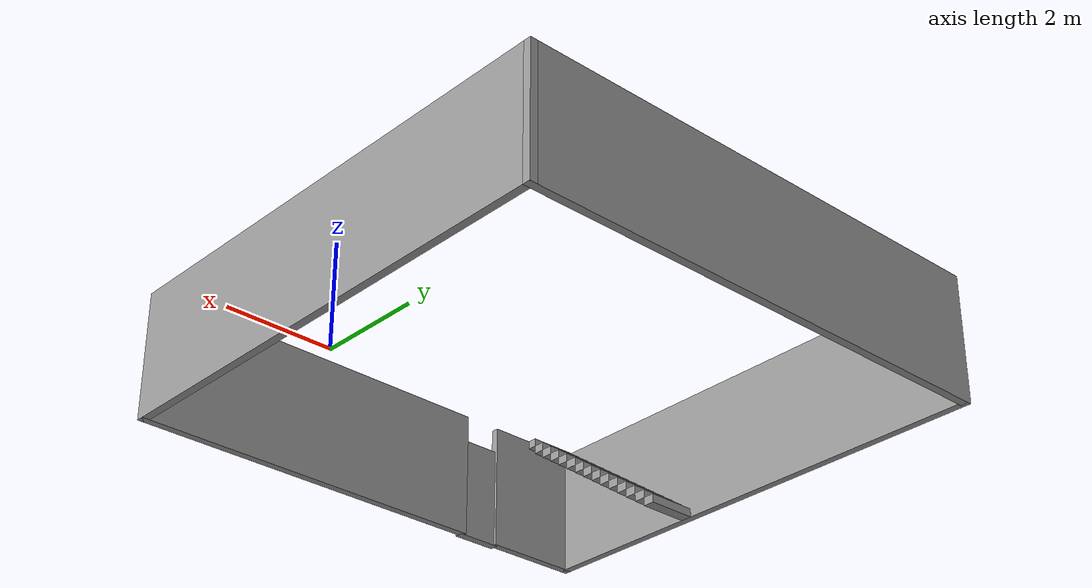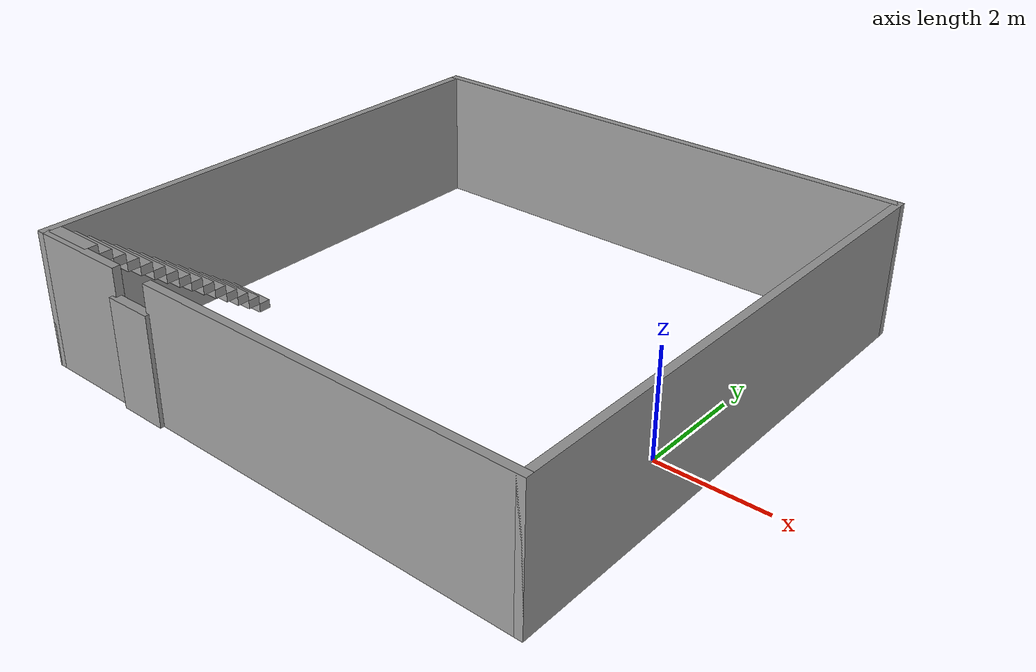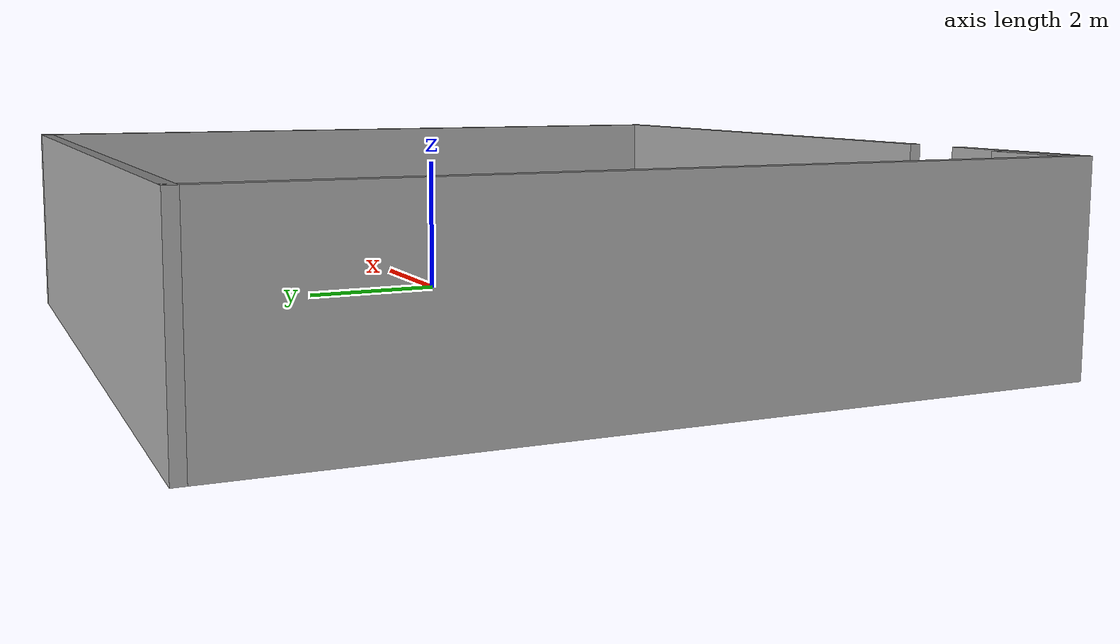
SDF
<?xml version='1.0'?>
<sdf version='1.7'>
  <model name='walls'>
    <pose>-4.082 0.775187 0 0 -0 0</pose>
    <link name='Door_0'>
      <collision name='Door_0_Collision'>
        <geometry>
          <box>
            <size>0.9 0.17 2</size>
          </box>
        </geometry>
        <pose>0 0 1 0 -0 0</pose>
      </collision>
      <visual name='Door_0_Visual'>
        <pose>0 0 1 0 -0 0</pose>
        <geometry>
          <box>
            <size>0.9 0.17 2</size>
          </box>
        </geometry>
        <material>
          <script>
            <uri>file://media/materials/scripts/gazebo.material</uri>
            <name>Gazebo/Grey</name>
          </script>
        </material>
      </visual>
      <pose>-2.63385 -4.98618 0 0 -0 0</pose>
    </link>
    <link name='Stairs_0'>
      <visual name='Stairs_0_Visual_0'>
        <pose>-4.35074 -1.51513 0.083333 0 -0 0</pose>
        <geometry>
          <box>
            <size>1 0.233333 0.166667</size>
          </box>
        </geometry>
        <material>
          <script>
            <uri>file://media/materials/scripts/gazebo.material</uri>
            <name>Gazebo/Grey</name>
          </script>
          <ambient>1 1 1 1</ambient>
        </material>
        <meta>
          <layer>0</layer>
        </meta>
      </visual>
      <collision name='Stairs_0_Collision_0'>
        <geometry>
          <box>
            <size>1 0.233333 0.166667</size>
          </box>
        </geometry>
        <pose>-4.35074 -1.51513 0.083333 0 -0 0</pose>
      </collision>
      <visual name='Stairs_0_Visual_1'>
        <pose>-4.35074 -1.74847 0.25 0 -0 0</pose>
        <geometry>
          <box>
            <size>1 0.233333 0.166667</size>
          </box>
        </geometry>
        <material>
          <script>
            <uri>file://media/materials/scripts/gazebo.material</uri>
            <name>Gazebo/Grey</name>
          </script>
          <ambient>1 1 1 1</ambient>
        </material>
        <meta>
          <layer>0</layer>
        </meta>
      </visual>
      <collision name='Stairs_0_Collision_1'>
        <geometry>
          <box>
            <size>1 0.233333 0.166667</size>
          </box>
        </geometry>
        <pose>-4.35074 -1.74847 0.25 0 -0 0</pose>
      </collision>
      <visual name='Stairs_0_Visual_2'>
        <pose>-4.35074 -1.9818 0.416667 0 -0 0</pose>
        <geometry>
          <box>
            <size>1 0.233333 0.166667</size>
          </box>
        </geometry>
        <material>
          <script>
            <uri>file://media/materials/scripts/gazebo.material</uri>
            <name>Gazebo/Grey</name>
          </script>
          <ambient>1 1 1 1</ambient>
        </material>
        <meta>
          <layer>0</layer>
        </meta>
      </visual>
      <collision name='Stairs_0_Collision_2'>
        <geometry>
          <box>
            <size>1 0.233333 0.166667</size>
          </box>
        </geometry>
        <pose>-4.35074 -1.9818 0.416667 0 -0 0</pose>
      </collision>
      <visual name='Stairs_0_Visual_3'>
        <pose>-4.35074 -2.21514 0.583333 0 -0 0</pose>
        <geometry>
          <box>
            <size>1 0.233333 0.166667</size>
          </box>
        </geometry>
        <material>
          <script>
            <uri>file://media/materials/scripts/gazebo.material</uri>
            <name>Gazebo/Grey</name>
          </script>
          <ambient>1 1 1 1</ambient>
        </material>
        <meta>
          <layer>0</layer>
        </meta>
      </visual>
      <collision name='Stairs_0_Collision_3'>
        <geometry>
          <box>
            <size>1 0.233333 0.166667</size>
          </box>
        </geometry>
        <pose>-4.35074 -2.21514 0.583333 0 -0 0</pose>
      </collision>
      <visual name='Stairs_0_Visual_4'>
        <pose>-4.35074 -2.44847 0.75 0 -0 0</pose>
        <geometry>
          <box>
            <size>1 0.233333 0.166667</size>
          </box>
        </geometry>
        <material>
          <script>
            <uri>file://media/materials/scripts/gazebo.material</uri>
            <name>Gazebo/Grey</name>
          </script>
          <ambient>1 1 1 1</ambient>
        </material>
        <meta>
          <layer>0</layer>
        </meta>
      </visual>
      <collision name='Stairs_0_Collision_4'>
        <geometry>
          <box>
            <size>1 0.233333 0.166667</size>
          </box>
        </geometry>
        <pose>-4.35074 -2.44847 0.75 0 -0 0</pose>
      </collision>
      <visual name='Stairs_0_Visual_5'>
        <pose>-4.35074 -2.6818 0.916667 0 -0 0</pose>
        <geometry>
          <box>
            <size>1 0.233333 0.166667</size>
          </box>
        </geometry>
        <material>
          <script>
            <uri>file://media/materials/scripts/gazebo.material</uri>
            <name>Gazebo/Grey</name>
          </script>
          <ambient>1 1 1 1</ambient>
        </material>
        <meta>
          <layer>0</layer>
        </meta>
      </visual>
      <collision name='Stairs_0_Collision_5'>
        <geometry>
          <box>
            <size>1 0.233333 0.166667</size>
          </box>
        </geometry>
        <pose>-4.35074 -2.6818 0.916667 0 -0 0</pose>
      </collision>
      <visual name='Stairs_0_Visual_6'>
        <pose>-4.35074 -2.91513 1.08333 0 -0 0</pose>
        <geometry>
          <box>
            <size>1 0.233333 0.166667</size>
          </box>
        </geometry>
        <material>
          <script>
            <uri>file://media/materials/scripts/gazebo.material</uri>
            <name>Gazebo/Grey</name>
          </script>
          <ambient>1 1 1 1</ambient>
        </material>
        <meta>
          <layer>0</layer>
        </meta>
      </visual>
      <collision name='Stairs_0_Collision_6'>
        <geometry>
          <box>
            <size>1 0.233333 0.166667</size>
          </box>
        </geometry>
        <pose>-4.35074 -2.91513 1.08333 0 -0 0</pose>
      </collision>
      <visual name='Stairs_0_Visual_7'>
        <pose>-4.35074 -3.14847 1.25 0 -0 0</pose>
        <geometry>
          <box>
            <size>1 0.233333 0.166667</size>
          </box>
        </geometry>
        <material>
          <script>
            <uri>file://media/materials/scripts/gazebo.material</uri>
            <name>Gazebo/Grey</name>
          </script>
          <ambient>1 1 1 1</ambient>
        </material>
        <meta>
          <layer>0</layer>
        </meta>
      </visual>
      <collision name='Stairs_0_Collision_7'>
        <geometry>
          <box>
            <size>1 0.233333 0.166667</size>
          </box>
        </geometry>
        <pose>-4.35074 -3.14847 1.25 0 -0 0</pose>
      </collision>
      <visual name='Stairs_0_Visual_8'>
        <pose>-4.35074 -3.3818 1.41667 0 -0 0</pose>
        <geometry>
          <box>
            <size>1 0.233333 0.166667</size>
          </box>
        </geometry>
        <material>
          <script>
            <uri>file://media/materials/scripts/gazebo.material</uri>
            <name>Gazebo/Grey</name>
          </script>
          <ambient>1 1 1 1</ambient>
        </material>
        <meta>
          <layer>0</layer>
        </meta>
      </visual>
      <collision name='Stairs_0_Collision_8'>
        <geometry>
          <box>
            <size>1 0.233333 0.166667</size>
          </box>
        </geometry>
        <pose>-4.35074 -3.3818 1.41667 0 -0 0</pose>
      </collision>
      <visual name='Stairs_0_Visual_9'>
        <pose>-4.35074 -3.61513 1.58333 0 -0 0</pose>
        <geometry>
          <box>
            <size>1 0.233333 0.166667</size>
          </box>
        </geometry>
        <material>
          <script>
            <uri>file://media/materials/scripts/gazebo.material</uri>
            <name>Gazebo/Grey</name>
          </script>
          <ambient>1 1 1 1</ambient>
        </material>
        <meta>
          <layer>0</layer>
        </meta>
      </visual>
      <collision name='Stairs_0_Collision_9'>
        <geometry>
          <box>
            <size>1 0.233333 0.166667</size>
          </box>
        </geometry>
        <pose>-4.35074 -3.61513 1.58333 0 -0 0</pose>
      </collision>
      <visual name='Stairs_0_Visual_10'>
        <pose>-4.35074 -3.84847 1.75 0 -0 0</pose>
        <geometry>
          <box>
            <size>1 0.233333 0.166667</size>
          </box>
        </geometry>
        <material>
          <script>
            <uri>file://media/materials/scripts/gazebo.material</uri>
            <name>Gazebo/Grey</name>
          </script>
          <ambient>1 1 1 1</ambient>
        </material>
        <meta>
          <layer>0</layer>
        </meta>
      </visual>
      <collision name='Stairs_0_Collision_10'>
        <geometry>
          <box>
            <size>1 0.233333 0.166667</size>
          </box>
        </geometry>
        <pose>-4.35074 -3.84847 1.75 0 -0 0</pose>
      </collision>
      <visual name='Stairs_0_Visual_11'>
        <pose>-4.35074 -4.0818 1.91667 0 -0 0</pose>
        <geometry>
          <box>
            <size>1 0.233333 0.166667</size>
          </box>
        </geometry>
        <material>
          <script>
            <uri>file://media/materials/scripts/gazebo.material</uri>
            <name>Gazebo/Grey</name>
          </script>
          <ambient>1 1 1 1</ambient>
        </material>
        <meta>
          <layer>0</layer>
        </meta>
      </visual>
      <collision name='Stairs_0_Collision_11'>
        <geometry>
          <box>
            <size>1 0.233333 0.166667</size>
          </box>
        </geometry>
        <pose>-4.35074 -4.0818 1.91667 0 -0 0</pose>
      </collision>
      <visual name='Stairs_0_Visual_12'>
        <pose>-4.35074 -4.31513 2.08333 0 -0 0</pose>
        <geometry>
          <box>
            <size>1 0.233333 0.166667</size>
          </box>
        </geometry>
        <material>
          <script>
            <uri>file://media/materials/scripts/gazebo.material</uri>
            <name>Gazebo/Grey</name>
          </script>
          <ambient>1 1 1 1</ambient>
        </material>
        <meta>
          <layer>0</layer>
        </meta>
      </visual>
      <collision name='Stairs_0_Collision_12'>
        <geometry>
          <box>
            <size>1 0.233333 0.166667</size>
          </box>
        </geometry>
        <pose>-4.35074 -4.31513 2.08333 0 -0 0</pose>
      </collision>
      <visual name='Stairs_0_Visual_13'>
        <pose>-4.35074 -4.54847 2.25 0 -0 0</pose>
        <geometry>
          <box>
            <size>1 0.233333 0.166667</size>
          </box>
        </geometry>
        <material>
          <script>
            <uri>file://media/materials/scripts/gazebo.material</uri>
            <name>Gazebo/Grey</name>
          </script>
          <ambient>1 1 1 1</ambient>
        </material>
        <meta>
          <layer>0</layer>
        </meta>
      </visual>
      <collision name='Stairs_0_Collision_13'>
        <geometry>
          <box>
            <size>1 0.233333 0.166667</size>
          </box>
        </geometry>
        <pose>-4.35074 -4.54847 2.25 0 -0 0</pose>
      </collision>
      <visual name='Stairs_0_Visual_14'>
        <pose>-4.35074 -4.7818 2.41667 0 -0 0</pose>
        <geometry>
          <box>
            <size>1 0.233333 0.166667</size>
          </box>
        </geometry>
        <material>
          <script>
            <uri>file://media/materials/scripts/gazebo.material</uri>
            <name>Gazebo/Grey</name>
          </script>
          <ambient>1 1 1 1</ambient>
        </material>
        <meta>
          <layer>0</layer>
        </meta>
      </visual>
      <collision name='Stairs_0_Collision_14'>
        <geometry>
          <box>
            <size>1 0.233333 0.166667</size>
          </box>
        </geometry>
        <pose>-4.35074 -4.7818 2.41667 0 -0 0</pose>
      </collision>
    </link>
    <link name='Wall_0'>
      <collision name='Wall_0_Collision'>
        <geometry>
          <box>
            <size>7.25 0.15 2.5</size>
          </box>
        </geometry>
        <pose>0 0 1.25 0 -0 0</pose>
      </collision>
      <visual name='Wall_0_Visual'>
        <pose>0 0 1.25 0 -0 0</pose>
        <geometry>
          <box>
            <size>7.25 0.15 2.5</size>
          </box>
        </geometry>
        <material>
          <script>
            <uri>file://media/materials/scripts/gazebo.material</uri>
            <name>Gazebo/Grey</name>
          </script>
          <ambient>1 1 1 1</ambient>
        </material>
        <meta>
          <layer>0</layer>
        </meta>
      </visual>
      <pose>1.375 -4.925 0 0 -0 0</pose>
    </link>
    <link name='Wall_1'>
      <collision name='Wall_1_Collision'>
        <geometry>
          <box>
            <size>10 0.15 2.5</size>
          </box>
        </geometry>
        <pose>0 0 1.25 0 -0 0</pose>
      </collision>
      <visual name='Wall_1_Visual'>
        <pose>0 0 1.25 0 -0 0</pose>
        <geometry>
          <box>
            <size>10 0.15 2.5</size>
          </box>
        </geometry>
        <material>
          <script>
            <uri>file://media/materials/scripts/gazebo.material</uri>
            <name>Gazebo/Grey</name>
          </script>
          <ambient>1 1 1 1</ambient>
        </material>
        <meta>
          <layer>0</layer>
        </meta>
      </visual>
      <pose>4.925 0 0 0 -0 1.5708</pose>
    </link>
    <link name='Wall_2'>
      <collision name='Wall_2_Collision'>
        <geometry>
          <box>
            <size>10 0.15 2.5</size>
          </box>
        </geometry>
        <pose>0 0 1.25 0 -0 0</pose>
      </collision>
      <visual name='Wall_2_Visual'>
        <pose>0 0 1.25 0 -0 0</pose>
        <geometry>
          <box>
            <size>10 0.15 2.5</size>
          </box>
        </geometry>
        <material>
          <script>
            <uri>file://media/materials/scripts/gazebo.material</uri>
            <name>Gazebo/Grey</name>
          </script>
          <ambient>1 1 1 1</ambient>
        </material>
        <meta>
          <layer>0</layer>
        </meta>
      </visual>
      <pose>0 4.925 0 0 -0 3.14159</pose>
    </link>
    <link name='Wall_3'>
      <collision name='Wall_3_Collision'>
        <geometry>
          <box>
            <size>10 0.15 2.5</size>
          </box>
        </geometry>
        <pose>0 0 1.25 0 -0 0</pose>
      </collision>
      <visual name='Wall_3_Visual'>
        <pose>0 0 1.25 0 -0 0</pose>
        <geometry>
          <box>
            <size>10 0.15 2.5</size>
          </box>
        </geometry>
        <material>
          <script>
            <uri>file://media/materials/scripts/gazebo.material</uri>
            <name>Gazebo/Grey</name>
          </script>
          <ambient>1 1 1 1</ambient>
        </material>
        <meta>
          <layer>0</layer>
        </meta>
      </visual>
      <pose>-4.925 0 0 0 -0 -1.5708</pose>
    </link>
    <link name='Wall_4'>
      <collision name='Wall_4_Collision'>
        <geometry>
          <box>
            <size>2 0.15 2.5</size>
          </box>
        </geometry>
        <pose>0 0 1.25 0 -0 0</pose>
      </collision>
      <visual name='Wall_4_Visual'>
        <pose>0 0 1.25 0 -0 0</pose>
        <geometry>
          <box>
            <size>2 0.15 2.5</size>
          </box>
        </geometry>
        <material>
          <script>
            <uri>file://media/materials/scripts/gazebo.material</uri>
            <name>Gazebo/Grey</name>
          </script>
          <ambient>1 1 1 1</ambient>
        </material>
        <meta>
          <layer>0</layer>
        </meta>
      </visual>
      <pose>-4 -4.925 0 0 -0 0</pose>
    </link>
    <static>1</static>
  </model>
</sdf>
